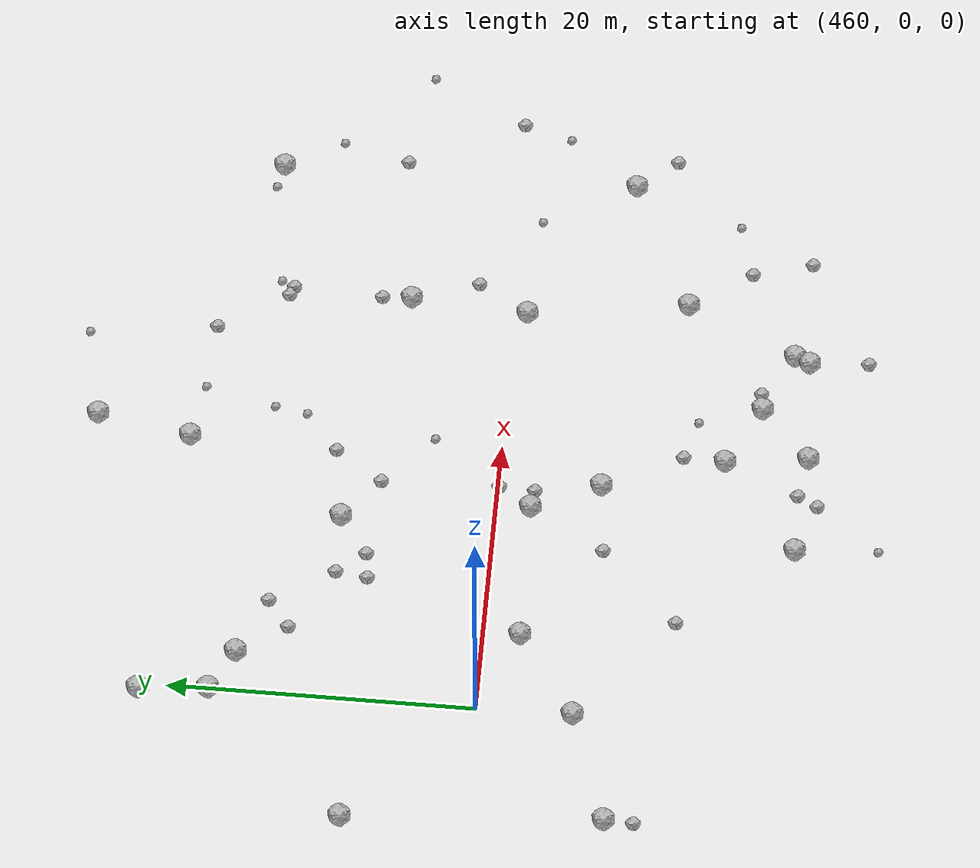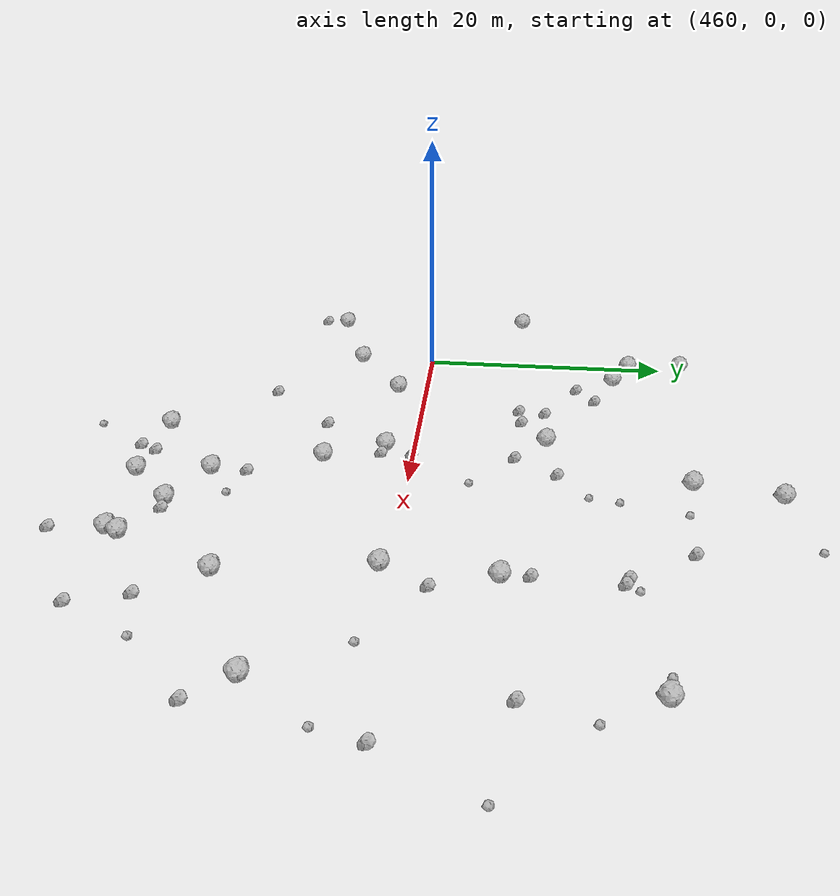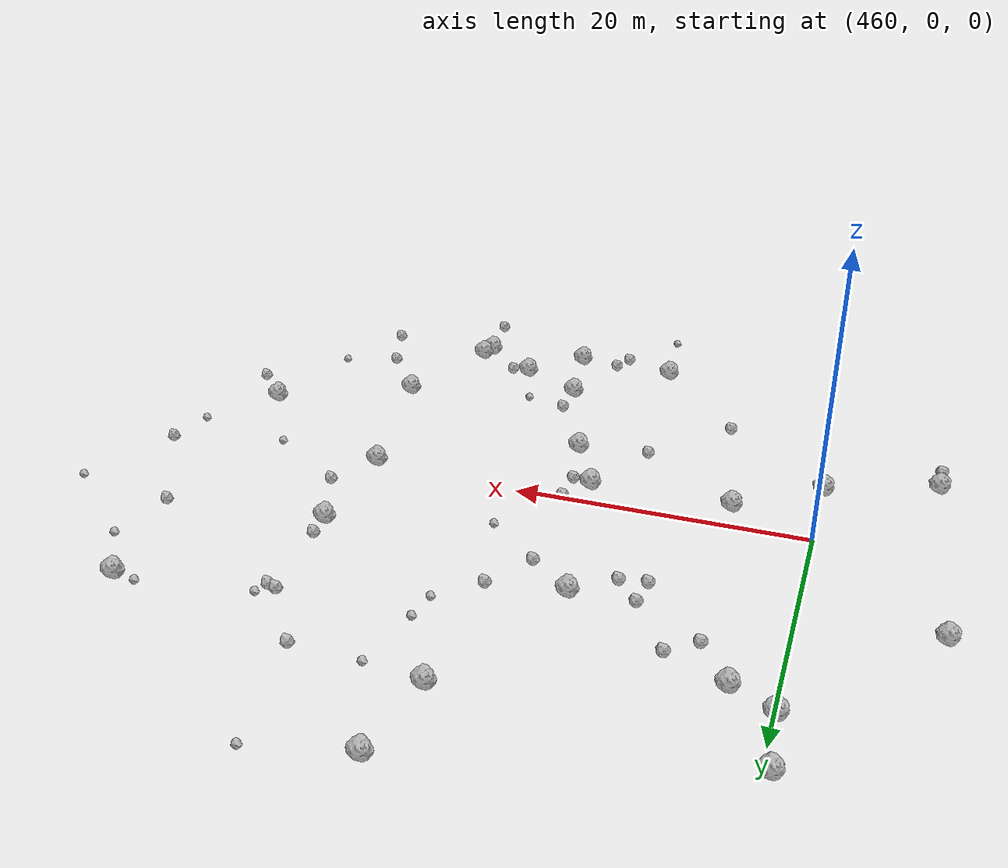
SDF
<sdf version="1.6">
 <world name="default">
  <include><uri>model://sun</uri></include>
  <model name="rock1_12_4">
   <include><uri>model://rock1</uri><pose>462.8233980537252 15.786214993537044 0.5 0 0 0</pose></include>
  </model>
  <model name="rock1_12_5">
   <include><uri>model://rock1</uri><pose>459.5740210226721 21.757996910844767 0.5 0 0 0</pose></include>
  </model>
  <model name="rock1_12_6">
   <include><uri>model://rock1</uri><pose>501.0552446608829 16.595181007074537 0.5 0 0 0</pose></include>
  </model>
  <model name="rock1_12_7">
   <include><uri>model://rock1</uri><pose>451.34807992818514 7.9149710463711 0.5 0 0 0</pose></include>
  </model>
  <model name="rock1_12_8">
   <include><uri>model://rock1</uri><pose>490.527548057028 -0.7570228403504018 0.5 0 0 0</pose></include>
  </model>
  <model name="rock1_12_9">
   <include><uri>model://rock1</uri><pose>480.6674875615014 -20.10582120855974 0.5 0 0 0</pose></include>
  </model>
  <model name="rock1_12_10">
   <include><uri>model://rock1</uri><pose>501.3661588210128 -7.2961251867676395 0.5 0 0 0</pose></include>
  </model>
  <model name="rock1_12_11">
   <include><uri>model://rock1</uri><pose>484.26505579181844 -16.86489054835005 0.5 0 0 0</pose></include>
  </model>
  <model name="rock1_12_12">
   <include><uri>model://rock1</uri><pose>480.15069560004565 26.797532960999753 0.5 0 0 0</pose></include>
  </model>
  <model name="rock1_12_13">
   <include><uri>model://rock1</uri><pose>460.0539187961731 -6.207876286820916 0.5 0 0 0</pose></include>
  </model>
  <model name="rock1_12_14">
   <include><uri>model://rock1</uri><pose>477.4279354828493 -6.723140648708931 0.5 0 0 0</pose></include>
  </model>
  <model name="rock1_12_15">
   <include><uri>model://rock1</uri><pose>465.68598424522094 -2.3645907422999564 0.5 0 0 0</pose></include>
  </model>
  <model name="rock1_12_16">
   <include><uri>model://rock1</uri><pose>459.9524759050706 17.258709891131893 0.5 0 0 0</pose></include>
  </model>
  <model name="rock1_12_17">
   <include><uri>model://rock1</uri><pose>479.9637016976727 -14.66563303573423 0.5 0 0 0</pose></include>
  </model>
  <model name="rock1_12_18">
   <include><uri>model://rock1</uri><pose>473.54869425005563 -19.641340692187203 0.5 0 0 0</pose></include>
  </model>
  <model name="rock1_12_19">
   <include><uri>model://rock1</uri><pose>478.97718385888567 20.55891327635971 0.5 0 0 0</pose></include>
  </model>
  <model name="rock1_12_20">
   <include><uri>model://rock1</uri><pose>475.38674556180234 -2.2288937235415354 0.5 0 0 0</pose></include>
  </model>
  <model name="rock1_12_21">
   <include><uri>model://rock1</uri><pose>491.05150683491473 7.026833101654304 0.5 0 0 0</pose></include>
  </model>
  <model name="rock1_12_22">
   <include><uri>model://rock1</uri><pose>488.1441340895851 -19.74531963651105 0.5 0 0 0</pose></include>
  </model>
  <model name="rock1_12_23">
   <include><uri>model://rock1</uri><pose>488.6073321179787 -18.748630708294236 0.5 0 0 0</pose></include>
  </model>
  <model name="rock1_12_24">
   <include><uri>model://rock1</uri><pose>452.52357269282976 -8.783609588821434 0.5 0 0 0</pose></include>
  </model>
  <model name="rock1_12_25">
   <include><uri>model://rock1</uri><pose>492.07159159913687 -11.44537630831444 0.5 0 0 0</pose></include>
  </model>
  <model name="rock1_12_26">
   <include><uri>model://rock1</uri><pose>473.6294409035979 10.05148702501576 0.5 0 0 0</pose></include>
  </model>
  <model name="rock2_12_0">
   <include><uri>model://rock2</uri><pose>477.0125774530912 -20.91039474403774 0.3 0 0 0</pose></include>
  </model>
  <model name="rock2_12_1">
   <include><uri>model://rock2</uri><pose>464.93071311937535 12.611395193008534 0.3 0 0 0</pose></include>
  </model>
  <model name="rock2_12_2">
   <include><uri>model://rock2</uri><pose>476.7577676418027 -0.0725706790080558 0.3 0 0 0</pose></include>
  </model>
  <model name="rock2_12_3">
   <include><uri>model://rock2</uri><pose>485.4513331488597 -16.73165314889272 0.3 0 0 0</pose></include>
  </model>
  <model name="rock2_12_4">
   <include><uri>model://rock2</uri><pose>470.8825748653534 8.11655345901412 0.3 0 0 0</pose></include>
  </model>
  <model name="rock2_12_5">
   <include><uri>model://rock2</uri><pose>476.50844939929937 7.680590325592711 0.3 0 0 0</pose></include>
  </model>
  <model name="rock2_12_6">
   <include><uri>model://rock2</uri><pose>480.04990034216127 -11.941679895415032 0.3 0 0 0</pose></include>
  </model>
  <model name="rock2_12_7">
   <include><uri>model://rock2</uri><pose>466.8205814426666 14.065619684374596 0.3 0 0 0</pose></include>
  </model>
  <model name="rock2_12_8">
   <include><uri>model://rock2</uri><pose>492.53771113652044 2.607724990644769 0.3 0 0 0</pose></include>
  </model>
  <model name="rock2_12_9">
   <include><uri>model://rock2</uri><pose>488.4120469859801 -23.676801524027773 0.3 0 0 0</pose></include>
  </model>
  <model name="rock2_12_10">
   <include><uri>model://rock2</uri><pose>467.3882928828326 -12.32439485983242 0.3 0 0 0</pose></include>
  </model>
  <model name="rock2_12_11">
   <include><uri>model://rock2</uri><pose>487.672492267412 19.711335266203754 0.3 0 0 0</pose></include>
  </model>
  <model name="rock2_12_12">
   <include><uri>model://rock2</uri><pose>494.89884342588556 -15.564840509851557 0.3 0 0 0</pose></include>
  </model>
  <model name="rock2_12_13">
   <include><uri>model://rock2</uri><pose>503.5888086756646 -9.938496907230807 0.3 0 0 0</pose></include>
  </model>
  <model name="rock2_12_14">
   <include><uri>model://rock2</uri><pose>477.72232286586205 -19.587875380898495 0.3 0 0 0</pose></include>
  </model>
  <model name="rock2_12_15">
   <include><uri>model://rock2</uri><pose>452.4196468435541 -10.685560254272904 0.3 0 0 0</pose></include>
  </model>
  <model name="rock2_12_16">
   <include><uri>model://rock2</uri><pose>478.6473078431975 10.833928232321071 0.3 0 0 0</pose></include>
  </model>
  <model name="rock2_12_17">
   <include><uri>model://rock2</uri><pose>490.9417386001661 8.993942439540362 0.3 0 0 0</pose></include>
  </model>
  <model name="rock2_12_18">
   <include><uri>model://rock2</uri><pose>505.76542284223353 0.6636054249447589 0.3 0 0 0</pose></include>
  </model>
  <model name="rock2_12_19">
   <include><uri>model://rock2</uri><pose>469.3482765015345 9.970641378873701 0.3 0 0 0</pose></include>
  </model>
  <model name="rock2_12_20">
   <include><uri>model://rock2</uri><pose>472.43298394992144 -7.215805250918418 0.3 0 0 0</pose></include>
  </model>
  <model name="rock2_12_21">
   <include><uri>model://rock2</uri><pose>469.07084574814917 7.888083317255621 0.3 0 0 0</pose></include>
  </model>
  <model name="rock2_12_22">
   <include><uri>model://rock2</uri><pose>476.6425347259698 -2.415000318994931 0.3 0 0 0</pose></include>
  </model>
  <model name="rock2_12_23">
   <include><uri>model://rock2</uri><pose>490.60180476653187 15.191322224087315 0.3 0 0 0</pose></include>
  </model>
  <model name="rock2_12_24">
   <include><uri>model://rock2</uri><pose>502.0150954722424 8.261861426777763 0.3 0 0 0</pose></include>
  </model>
  <model name="rock2_12_25">
   <include><uri>model://rock2</uri><pose>491.257918438233 14.931586597923143 0.3 0 0 0</pose></include>
  </model>
  <model name="rock2_12_26">
   <include><uri>model://rock2</uri><pose>496.03030801170337 -19.5225195556629 0.3 0 0 0</pose></include>
  </model>
  <model name="rock3_12_0">
   <include><uri>model://rock3</uri><pose>503.2709950698516 12.704592196480526 0.2 0 0 0</pose></include>
  </model>
  <model name="rock3_12_1">
   <include><uri>model://rock3</uri><pose>504.83576382658373 -2.605681736852816 0.2 0 0 0</pose></include>
  </model>
  <model name="rock3_12_2">
   <include><uri>model://rock3</uri><pose>480.10011597947255 4.419620912110126 0.2 0 0 0</pose></include>
  </model>
  <model name="rock3_12_3">
   <include><uri>model://rock3</uri><pose>473.9345452158085 -25.111638405369803 0.2 0 0 0</pose></include>
  </model>
  <model name="rock3_12_4">
   <include><uri>model://rock3</uri><pose>491.693371390945 15.783003084764907 0.2 0 0 0</pose></include>
  </model>
  <model name="rock3_12_5">
   <include><uri>model://rock3</uri><pose>482.88215656385256 -12.78384229853511 0.2 0 0 0</pose></include>
  </model>
  <model name="rock3_12_6">
   <include><uri>model://rock3</uri><pose>499.29765526948734 16.936403555002272 0.2 0 0 0</pose></include>
  </model>
  <model name="rock3_12_7">
   <include><uri>model://rock3</uri><pose>481.316998564493 13.028126589064321 0.2 0 0 0</pose></include>
  </model>
  <model name="rock3_12_8">
   <include><uri>model://rock3</uri><pose>498.6657811656431 -14.568517241348772 0.2 0 0 0</pose></include>
  </model>
  <model name="rock3_12_9">
   <include><uri>model://rock3</uri><pose>509.1269283876721 7.0630890181832555 0.2 0 0 0</pose></include>
  </model>
  <model name="rock3_12_10">
   <include><uri>model://rock3</uri><pose>486.5361601313184 28.09267651306198 0.2 0 0 0</pose></include>
  </model>
  <model name="rock3_12_11">
   <include><uri>model://rock3</uri><pose>497.9470285500563 -1.2197370633571936 0.2 0 0 0</pose></include>
  </model>
  <model name="rock3_12_12">
   <include><uri>model://rock3</uri><pose>481.7180273003641 15.176588992535393 0.2 0 0 0</pose></include>
  </model>
  <model name="rock3_12_13">
   <include><uri>model://rock3</uri><pose>482.8827093153973 19.90413541336659 0.2 0 0 0</pose></include>
  </model>
 </world>
</sdf>
